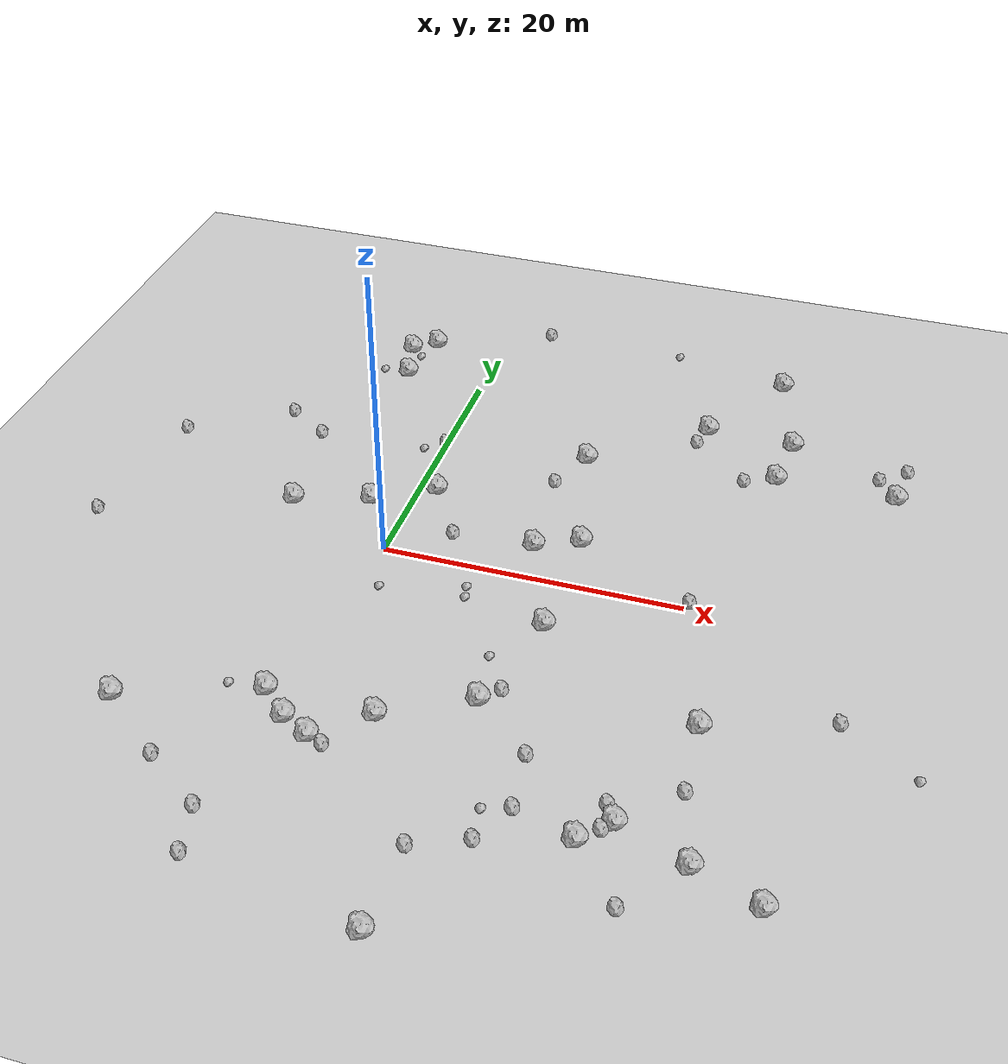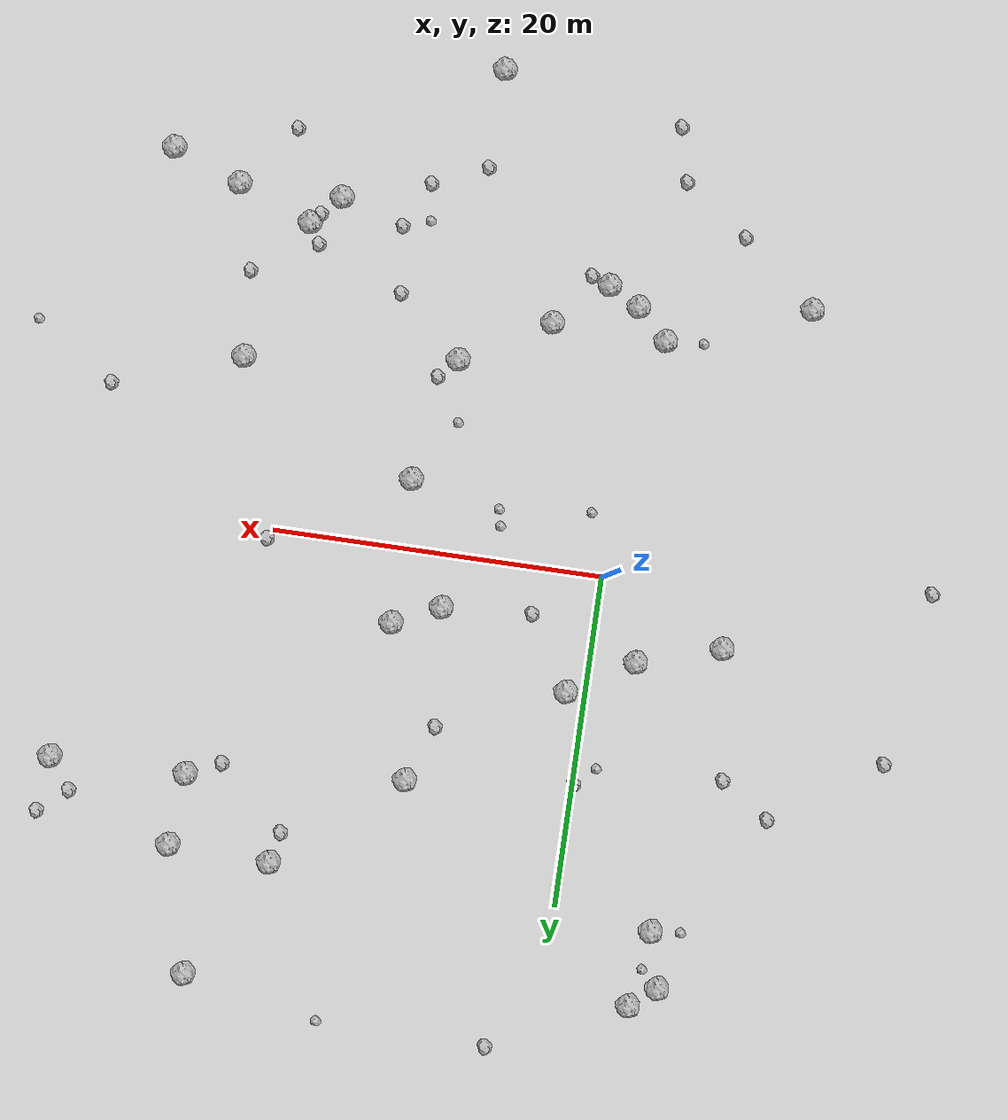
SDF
<sdf version="1.6">
 <world name="default">
  <include><uri>model://custom_ground</uri></include>
  <include><uri>model://sun</uri></include>
  <model name="rock1_0_0">
   <include><uri>model://rock1</uri><pose>-10.307833685437739 -17.85518943456887 0.5 0 0 0</pose></include>
  </model>
  <model name="rock1_0_1">
   <include><uri>model://rock1</uri><pose>10.448616298842182 -11.80587458531868 0.5 0 0 0</pose></include>
  </model>
  <model name="rock1_0_2">
   <include><uri>model://rock1</uri><pose>23.517651244544368 19.533427763528863 0.5 0 0 0</pose></include>
  </model>
  <model name="rock1_0_3">
   <include><uri>model://rock1</uri><pose>1.1880558107352037 7.084446178551843 0.5 0 0 0</pose></include>
  </model>
  <model name="rock1_0_4">
   <include><uri>model://rock1</uri><pose>-1.795628786913536 -14.700622959977103 0.5 0 0 0</pose></include>
  </model>
  <model name="rock1_0_5">
   <include><uri>model://rock1</uri><pose>10.146372818140204 -29.68067572311503 0.5 0 0 0</pose></include>
  </model>
  <model name="rock1_0_6">
   <include><uri>model://rock1</uri><pose>29.3042301435094 -22.137740524987258 0.5 0 0 0</pose></include>
  </model>
  <model name="rock1_0_7">
   <include><uri>model://rock1</uri><pose>-6.717508183285631 23.847237975825216 0.5 0 0 0</pose></include>
  </model>
  <model name="rock1_0_8">
   <include><uri>model://rock1</uri><pose>17.386789054686318 19.733217177491987 0.5 0 0 0</pose></include>
  </model>
  <model name="rock1_0_9">
   <include><uri>model://rock1</uri><pose>-5.864184833933184 20.534969034190027 0.5 0 0 0</pose></include>
  </model>
  <model name="rock1_0_10">
   <include><uri>model://rock1</uri><pose>-7.760374870198872 3.1888157762993856 0.5 0 0 0</pose></include>
  </model>
  <model name="rock1_0_11">
   <include><uri>model://rock1</uri><pose>-2.721785012246805 4.73354834969723 0.5 0 0 0</pose></include>
  </model>
  <model name="rock1_0_12">
   <include><uri>model://rock1</uri><pose>21.48837844746741 27.013029863951772 0.5 0 0 0</pose></include>
  </model>
  <model name="rock1_0_13">
   <include><uri>model://rock1</uri><pose>-5.140197389439065 25.105804382480358 0.5 0 0 0</pose></include>
  </model>
  <model name="rock1_0_14">
   <include><uri>model://rock1</uri><pose>5.125344375863861 -14.837496671802256 0.5 0 0 0</pose></include>
  </model>
  <model name="rock1_0_15">
   <include><uri>model://rock1</uri><pose>20.50491525555907 -18.773134696811468 0.5 0 0 0</pose></include>
  </model>
  <model name="rock1_0_16">
   <include><uri>model://rock1</uri><pose>25.070374426544262 -20.537365303295744 0.5 0 0 0</pose></include>
  </model>
  <model name="rock1_0_17">
   <include><uri>model://rock1</uri><pose>12.206816095377896 -4.262487109916034 0.5 0 0 0</pose></include>
  </model>
  <model name="rock1_0_18">
   <include><uri>model://rock1</uri><pose>9.314530999005822 3.1289760273519818 0.5 0 0 0</pose></include>
  </model>
  <model name="rock1_0_19">
   <include><uri>model://rock1</uri><pose>31.312147680285833 15.319146105169125 0.5 0 0 0</pose></include>
  </model>
  <model name="rock1_0_20">
   <include><uri>model://rock1</uri><pose>2.016513899799161 -17.580852236929243 0.5 0 0 0</pose></include>
  </model>
  <model name="rock1_0_21">
   <include><uri>model://rock1</uri><pose>23.294720144863675 -10.168283524781405 0.5 0 0 0</pose></include>
  </model>
  <model name="rock1_0_22">
   <include><uri>model://rock1</uri><pose>0.10269832410829594 -16.52855328796437 0.5 0 0 0</pose></include>
  </model>
  <model name="rock1_0_23">
   <include><uri>model://rock1</uri><pose>10.015269173864802 13.698324513280795 0.5 0 0 0</pose></include>
  </model>
  <model name="rock1_0_24">
   <include><uri>model://rock1</uri><pose>23.104122580344907 15.19748517412809 0.5 0 0 0</pose></include>
  </model>
  <model name="rock1_0_25">
   <include><uri>model://rock1</uri><pose>12.174875009242335 4.461362861513983 0.5 0 0 0</pose></include>
  </model>
  <model name="rock1_0_26">
   <include><uri>model://rock1</uri><pose>18.811335987200167 -20.560367333638688 0.5 0 0 0</pose></include>
  </model>
  <model name="rock2_0_0">
   <include><uri>model://rock2</uri><pose>21.01417605007707 14.313682053407 0.3 0 0 0</pose></include>
  </model>
  <model name="rock2_0_1">
   <include><uri>model://rock2</uri><pose>11.507018598572255 -10.601042176901878 0.3 0 0 0</pose></include>
  </model>
  <model name="rock2_0_2">
   <include><uri>model://rock2</uri><pose>19.924545016767517 -19.39431592686077 0.3 0 0 0</pose></include>
  </model>
  <model name="rock2_0_3">
   <include><uri>model://rock2</uri><pose>13.555220796957308 -22.162443509834915 0.3 0 0 0</pose></include>
  </model>
  <model name="rock2_0_4">
   <include><uri>model://rock2</uri><pose>-8.936186714521577 11.069984344817627 0.3 0 0 0</pose></include>
  </model>
  <model name="rock2_0_5">
   <include><uri>model://rock2</uri><pose>8.647079767289704 10.327096597118597 0.3 0 0 0</pose></include>
  </model>
  <model name="rock2_0_6">
   <include><uri>model://rock2</uri><pose>20.306309139190112 0.5365384268996749 0.3 0 0 0</pose></include>
  </model>
  <model name="rock2_0_7">
   <include><uri>model://rock2</uri><pose>-1.7748101464592345 -24.451074893968766 0.3 0 0 0</pose></include>
  </model>
  <model name="rock2_0_8">
   <include><uri>model://rock2</uri><pose>19.78983604270936 -17.542259316791426 0.3 0 0 0</pose></include>
  </model>
  <model name="rock2_0_9">
   <include><uri>model://rock2</uri><pose>31.641076134505425 18.691910386852165 0.3 0 0 0</pose></include>
  </model>
  <model name="rock2_0_10">
   <include><uri>model://rock2</uri><pose>10.25985658344226 -23.625701264173415 0.3 0 0 0</pose></include>
  </model>
  <model name="rock2_0_11">
   <include><uri>model://rock2</uri><pose>22.047644022559723 -24.347803883815196 0.3 0 0 0</pose></include>
  </model>
  <model name="rock2_0_12">
   <include><uri>model://rock2</uri><pose>14.918341640115209 -19.35590953835227 0.3 0 0 0</pose></include>
  </model>
  <model name="rock2_0_13">
   <include><uri>model://rock2</uri><pose>30.991888945314777 -7.448582151520661 0.3 0 0 0</pose></include>
  </model>
  <model name="rock2_0_14">
   <include><uri>model://rock2</uri><pose>3.1237944430124607 -17.99236745460167 0.3 0 0 0</pose></include>
  </model>
  <model name="rock2_0_15">
   <include><uri>model://rock2</uri><pose>-0.9922427177591011 -27.735747811944464 0.3 0 0 0</pose></include>
  </model>
  <model name="rock2_0_16">
   <include><uri>model://rock2</uri><pose>-11.885711897911502 13.01758678374815 0.3 0 0 0</pose></include>
  </model>
  <model name="rock2_0_17">
   <include><uri>model://rock2</uri><pose>-18.389069829235606 8.71027357809583 0.3 0 0 0</pose></include>
  </model>
  <model name="rock2_0_18">
   <include><uri>model://rock2</uri><pose>-5.761174112734693 -21.609916236451895 0.3 0 0 0</pose></include>
  </model>
  <model name="rock2_0_19">
   <include><uri>model://rock2</uri><pose>-19.88558740222973 -1.8325398515859384 0.3 0 0 0</pose></include>
  </model>
  <model name="rock2_0_20">
   <include><uri>model://rock2</uri><pose>14.43302501555172 -15.288867888442628 0.3 0 0 0</pose></include>
  </model>
  <model name="rock2_0_21">
   <include><uri>model://rock2</uri><pose>29.899956142964747 17.211513351149343 0.3 0 0 0</pose></include>
  </model>
  <model name="rock2_0_22">
   <include><uri>model://rock2</uri><pose>-0.09233278968024905 12.562385154772997 0.3 0 0 0</pose></include>
  </model>
  <model name="rock2_0_23">
   <include><uri>model://rock2</uri><pose>16.92475968077617 17.930559858822562 0.3 0 0 0</pose></include>
  </model>
  <model name="rock2_0_24">
   <include><uri>model://rock2</uri><pose>2.967433795296074 28.81706346089468 0.3 0 0 0</pose></include>
  </model>
  <model name="rock2_0_25">
   <include><uri>model://rock2</uri><pose>23.650828856734243 -15.37410774704176 0.3 0 0 0</pose></include>
  </model>
  <model name="rock2_0_26">
   <include><uri>model://rock2</uri><pose>3.8339524829843583 2.7777867992684193 0.3 0 0 0</pose></include>
  </model>
  <model name="rock3_0_0">
   <include><uri>model://rock3</uri><pose>6.666722707546548 -3.232290422298412 0.2 0 0 0</pose></include>
  </model>
  <model name="rock3_0_1">
   <include><uri>model://rock3</uri><pose>6.441108493830786 -2.2316955509330114 0.2 0 0 0</pose></include>
  </model>
  <model name="rock3_0_2">
   <include><uri>model://rock3</uri><pose>13.189067393400002 28.732480643986165 0.2 0 0 0</pose></include>
  </model>
  <model name="rock3_0_3">
   <include><uri>model://rock3</uri><pose>-7.731074386605854 20.40163024893109 0.2 0 0 0</pose></include>
  </model>
  <model name="rock3_0_4">
   <include><uri>model://rock3</uri><pose>-4.168885141944346 -14.902200366611194 0.2 0 0 0</pose></include>
  </model>
  <model name="rock3_0_5">
   <include><uri>model://rock3</uri><pose>-5.735953154326159 22.89779037488121 0.2 0 0 0</pose></include>
  </model>
  <model name="rock3_0_6">
   <include><uri>model://rock3</uri><pose>9.873190147381148 -8.05670872255979 0.2 0 0 0</pose></include>
  </model>
  <model name="rock3_0_7">
   <include><uri>model://rock3</uri><pose>13.25851382691976 -19.954370090946554 0.2 0 0 0</pose></include>
  </model>
  <model name="rock3_0_8">
   <include><uri>model://rock3</uri><pose>1.1029550074144971 -3.8310269444528586 0.2 0 0 0</pose></include>
  </model>
  <model name="rock3_0_9">
   <include><uri>model://rock3</uri><pose>-1.3366535924974556 11.408075014213424 0.2 0 0 0</pose></include>
  </model>
  <model name="rock3_0_10">
   <include><uri>model://rock3</uri><pose>35.89260555664294 -10.699868522622975 0.2 0 0 0</pose></include>
  </model>
 </world>
</sdf>
